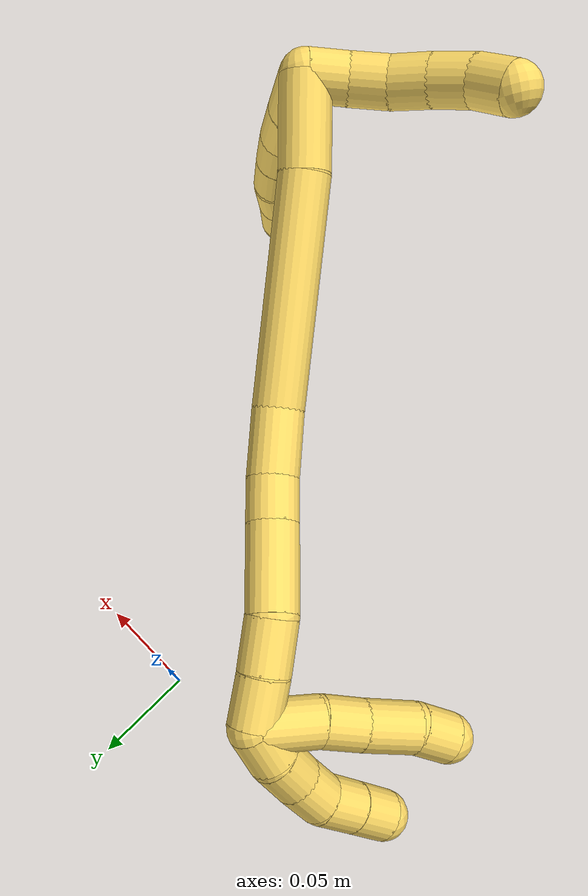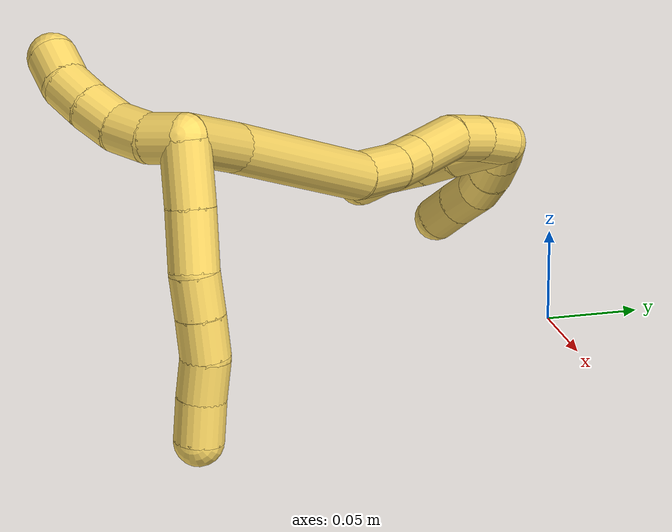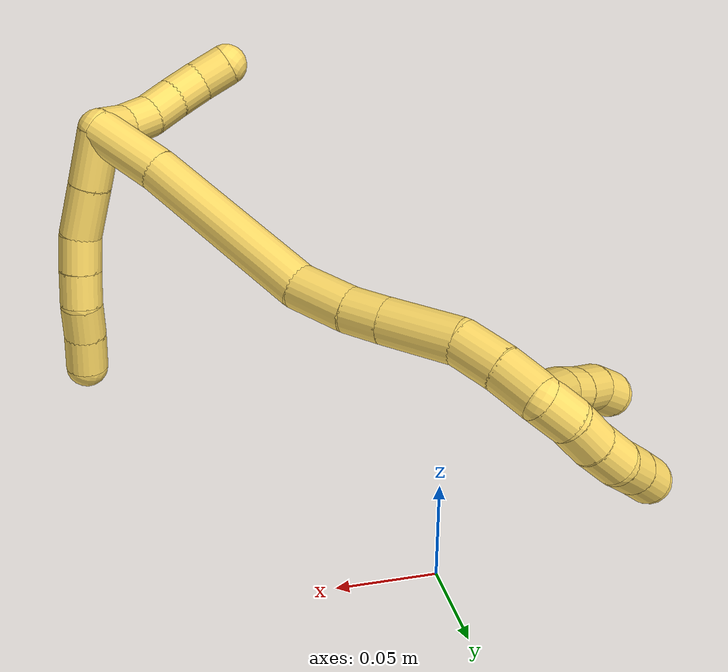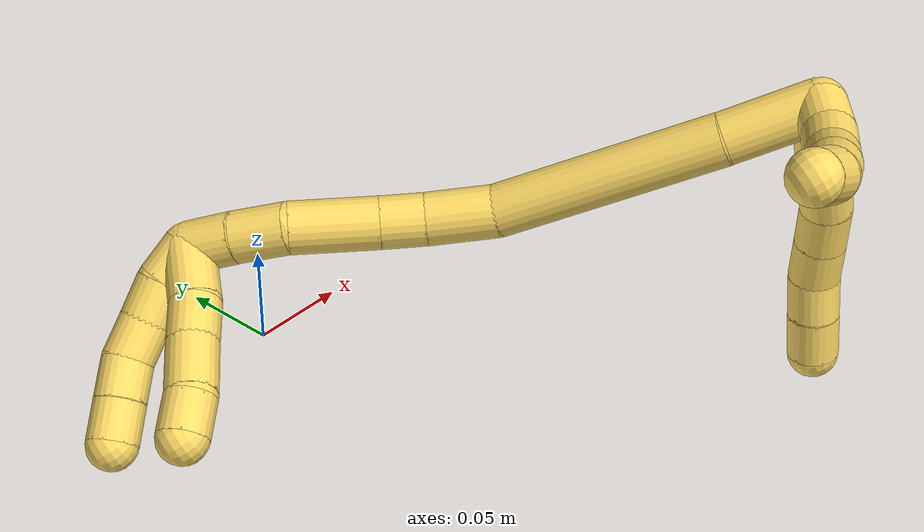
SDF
<sdf version="1.7">
 <world name="default">
  <model name="5">
   <static>0</static>
   <link name="5">
    <collision name="collision-cylinder-e_1_2_8">
     <pose>0.015395 0.004368 -0.004059 -2.31954 1.20124 -2.00831</pose>
     <geometry><cylinder><radius>0.0125</radius><length>0.033019</length></cylinder></geometry>
     <surface>
      <friction><ode><mu>1.16</mu><mu2>1.16</mu2><slip1>0</slip1><slip2>0</slip2></ode></friction>
      <contact><ode><kp>1e+06</kp><kd>1</kd><max_vel>0</max_vel><min_depth>0.001</min_depth></ode></contact>
     </surface>
    </collision>
    <visual name="visual-cylinder-e_1_2_8">
     <pose>0.015395 0.004368 -0.004059 -2.31954 1.20124 -2.00831</pose>
     <geometry><cylinder><radius>0.0125</radius><length>0.033019</length></cylinder></geometry>
     <material><ambient>1 0.858824 0.4 1</ambient></material>
    </visual>
    <collision name="collision-cylinder-e_2_8_9">
     <pose>0.045315 0.012494 -0.011693 -2.33116 1.22787 -2.04812</pose>
     <geometry><cylinder><radius>0.0125</radius><length>0.030845</length></cylinder></geometry>
     <surface>
      <friction><ode><mu>1.16</mu><mu2>1.16</mu2><slip1>0</slip1><slip2>0</slip2></ode></friction>
      <contact><ode><kp>1e+06</kp><kd>1</kd><max_vel>0</max_vel><min_depth>0.001</min_depth></ode></contact>
     </surface>
    </collision>
    <visual name="visual-cylinder-e_2_8_9">
     <pose>0.045315 0.012494 -0.011693 -2.33116 1.22787 -2.04812</pose>
     <geometry><cylinder><radius>0.0125</radius><length>0.030845</length></cylinder></geometry>
     <material><ambient>1 0.858824 0.4 1</ambient></material>
    </visual>
    <collision name="collision-cylinder-e_3_9_10">
     <pose>0.069263 0.019043 -0.019761 -2.58581 1.05921 -2.23469</pose>
     <geometry><cylinder><radius>0.0125</radius><length>0.021614</length></cylinder></geometry>
     <surface>
      <friction><ode><mu>1.16</mu><mu2>1.16</mu2><slip1>0</slip1><slip2>0</slip2></ode></friction>
      <contact><ode><kp>1e+06</kp><kd>1</kd><max_vel>0</max_vel><min_depth>0.001</min_depth></ode></contact>
     </surface>
    </collision>
    <visual name="visual-cylinder-e_3_9_10">
     <pose>0.069263 0.019043 -0.019761 -2.58581 1.05921 -2.23469</pose>
     <geometry><cylinder><radius>0.0125</radius><length>0.021614</length></cylinder></geometry>
     <material><ambient>1 0.858824 0.4 1</ambient></material>
    </visual>
    <collision name="collision-cylinder-e_4_10_11">
     <pose>0.087889 0.02425 -0.028923 -2.66403 1.05186 -2.34741</pose>
     <geometry><cylinder><radius>0.0125</radius><length>0.021196</length></cylinder></geometry>
     <surface>
      <friction><ode><mu>1.16</mu><mu2>1.16</mu2><slip1>0</slip1><slip2>0</slip2></ode></friction>
      <contact><ode><kp>1e+06</kp><kd>1</kd><max_vel>0</max_vel><min_depth>0.001</min_depth></ode></contact>
     </surface>
    </collision>
    <visual name="visual-cylinder-e_4_10_11">
     <pose>0.087889 0.02425 -0.028923 -2.66403 1.05186 -2.34741</pose>
     <geometry><cylinder><radius>0.0125</radius><length>0.021196</length></cylinder></geometry>
     <material><ambient>1 0.858824 0.4 1</ambient></material>
    </visual>
    <collision name="collision-cylinder-e_5_11_12">
     <pose>0.106624 0.026839 -0.037936 -3.10183 1.14287 -3.07976</pose>
     <geometry><cylinder><radius>0.0125</radius><length>0.020955</length></cylinder></geometry>
     <surface>
      <friction><ode><mu>1.16</mu><mu2>1.16</mu2><slip1>0</slip1><slip2>0</slip2></ode></friction>
      <contact><ode><kp>1e+06</kp><kd>1</kd><max_vel>0</max_vel><min_depth>0.001</min_depth></ode></contact>
     </surface>
    </collision>
    <visual name="visual-cylinder-e_5_11_12">
     <pose>0.106624 0.026839 -0.037936 -3.10183 1.14287 -3.07976</pose>
     <geometry><cylinder><radius>0.0125</radius><length>0.020955</length></cylinder></geometry>
     <material><ambient>1 0.858824 0.4 1</ambient></material>
    </visual>
    <collision name="collision-cylinder-e_6_12_6">
     <pose>0.126419 0.027821 -0.046655 -2.95861 1.16174 -2.86385</pose>
     <geometry><cylinder><radius>0.0125</radius><length>0.022371</length></cylinder></geometry>
     <surface>
      <friction><ode><mu>1.16</mu><mu2>1.16</mu2><slip1>0</slip1><slip2>0</slip2></ode></friction>
      <contact><ode><kp>1e+06</kp><kd>1</kd><max_vel>0</max_vel><min_depth>0.001</min_depth></ode></contact>
     </surface>
    </collision>
    <visual name="visual-cylinder-e_6_12_6">
     <pose>0.126419 0.027821 -0.046655 -2.95861 1.16174 -2.86385</pose>
     <geometry><cylinder><radius>0.0125</radius><length>0.022371</length></cylinder></geometry>
     <material><ambient>1 0.858824 0.4 1</ambient></material>
    </visual>
    <collision name="collision-cylinder-e_1_2_13">
     <pose>0.001662 -0.009456 -0.002798 1.85854 0.166957 0.223119</pose>
     <geometry><cylinder><radius>0.0125</radius><length>0.02</length></cylinder></geometry>
     <surface>
      <friction><ode><mu>1.16</mu><mu2>1.16</mu2><slip1>0</slip1><slip2>0</slip2></ode></friction>
      <contact><ode><kp>1e+06</kp><kd>1</kd><max_vel>0</max_vel><min_depth>0.001</min_depth></ode></contact>
     </surface>
    </collision>
    <visual name="visual-cylinder-e_1_2_13">
     <pose>0.001662 -0.009456 -0.002798 1.85854 0.166957 0.223119</pose>
     <geometry><cylinder><radius>0.0125</radius><length>0.02</length></cylinder></geometry>
     <material><ambient>1 0.858824 0.4 1</ambient></material>
    </visual>
    <collision name="collision-cylinder-e_2_13_14">
     <pose>0.002164 -0.02831 -0.008808 1.89996 -0.116194 -0.162302</pose>
     <geometry><cylinder><radius>0.0125</radius><length>0.02</length></cylinder></geometry>
     <surface>
      <friction><ode><mu>1.16</mu><mu2>1.16</mu2><slip1>0</slip1><slip2>0</slip2></ode></friction>
      <contact><ode><kp>1e+06</kp><kd>1</kd><max_vel>0</max_vel><min_depth>0.001</min_depth></ode></contact>
     </surface>
    </collision>
    <visual name="visual-cylinder-e_2_13_14">
     <pose>0.002164 -0.02831 -0.008808 1.89996 -0.116194 -0.162302</pose>
     <geometry><cylinder><radius>0.0125</radius><length>0.02</length></cylinder></geometry>
     <material><ambient>1 0.858824 0.4 1</ambient></material>
    </visual>
    <collision name="collision-cylinder-e_3_14_15">
     <pose>-0.002544 -0.046763 -0.014352 1.82307 -0.362832 -0.464868</pose>
     <geometry><cylinder><radius>0.0125</radius><length>0.02</length></cylinder></geometry>
     <surface>
      <friction><ode><mu>1.16</mu><mu2>1.16</mu2><slip1>0</slip1><slip2>0</slip2></ode></friction>
      <contact><ode><kp>1e+06</kp><kd>1</kd><max_vel>0</max_vel><min_depth>0.001</min_depth></ode></contact>
     </surface>
    </collision>
    <visual name="visual-cylinder-e_3_14_15">
     <pose>-0.002544 -0.046763 -0.014352 1.82307 -0.362832 -0.464868</pose>
     <geometry><cylinder><radius>0.0125</radius><length>0.02</length></cylinder></geometry>
     <material><ambient>1 0.858824 0.4 1</ambient></material>
    </visual>
    <collision name="collision-cylinder-e_4_15_16">
     <pose>-0.010269 -0.064412 -0.019629 1.90075 -0.430778 -0.594242</pose>
     <geometry><cylinder><radius>0.0125</radius><length>0.02</length></cylinder></geometry>
     <surface>
      <friction><ode><mu>1.16</mu><mu2>1.16</mu2><slip1>0</slip1><slip2>0</slip2></ode></friction>
      <contact><ode><kp>1e+06</kp><kd>1</kd><max_vel>0</max_vel><min_depth>0.001</min_depth></ode></contact>
     </surface>
    </collision>
    <visual name="visual-cylinder-e_4_15_16">
     <pose>-0.010269 -0.064412 -0.019629 1.90075 -0.430778 -0.594242</pose>
     <geometry><cylinder><radius>0.0125</radius><length>0.02</length></cylinder></geometry>
     <material><ambient>1 0.858824 0.4 1</ambient></material>
    </visual>
    <collision name="collision-cylinder-e_5_16_5">
     <pose>-0.020499 -0.07973 -0.026836 2.13602 -0.650287 -1.09986</pose>
     <geometry><cylinder><radius>0.0125</radius><length>0.02</length></cylinder></geometry>
     <surface>
      <friction><ode><mu>1.16</mu><mu2>1.16</mu2><slip1>0</slip1><slip2>0</slip2></ode></friction>
      <contact><ode><kp>1e+06</kp><kd>1</kd><max_vel>0</max_vel><min_depth>0.001</min_depth></ode></contact>
     </surface>
    </collision>
    <visual name="visual-cylinder-e_5_16_5">
     <pose>-0.020499 -0.07973 -0.026836 2.13602 -0.650287 -1.09986</pose>
     <geometry><cylinder><radius>0.0125</radius><length>0.02</length></cylinder></geometry>
     <material><ambient>1 0.858824 0.4 1</ambient></material>
    </visual>
    <collision name="collision-cylinder-e_1_2_17">
     <pose>-0.002443 0.00516 -0.02161 -2.90721 -0.109538 0.87162</pose>
     <geometry><cylinder><radius>0.0125</radius><length>0.044703</length></cylinder></geometry>
     <surface>
      <friction><ode><mu>1.16</mu><mu2>1.16</mu2><slip1>0</slip1><slip2>0</slip2></ode></friction>
      <contact><ode><kp>1e+06</kp><kd>1</kd><max_vel>0</max_vel><min_depth>0.001</min_depth></ode></contact>
     </surface>
    </collision>
    <visual name="visual-cylinder-e_1_2_17">
     <pose>-0.002443 0.00516 -0.02161 -2.90721 -0.109538 0.87162</pose>
     <geometry><cylinder><radius>0.0125</radius><length>0.044703</length></cylinder></geometry>
     <material><ambient>1 0.858824 0.4 1</ambient></material>
    </visual>
    <collision name="collision-cylinder-e_2_17_18">
     <pose>-0.009491 0.028394 -0.094629 -2.80352 -0.084284 0.484438</pose>
     <geometry><cylinder><radius>0.0125</radius><length>0.109376</length></cylinder></geometry>
     <surface>
      <friction><ode><mu>1.16</mu><mu2>1.16</mu2><slip1>0</slip1><slip2>0</slip2></ode></friction>
      <contact><ode><kp>1e+06</kp><kd>1</kd><max_vel>0</max_vel><min_depth>0.001</min_depth></ode></contact>
     </surface>
    </collision>
    <visual name="visual-cylinder-e_2_17_18">
     <pose>-0.009491 0.028394 -0.094629 -2.80352 -0.084284 0.484438</pose>
     <geometry><cylinder><radius>0.0125</radius><length>0.109376</length></cylinder></geometry>
     <material><ambient>1 0.858824 0.4 1</ambient></material>
    </visual>
    <collision name="collision-cylinder-e_3_18_19">
     <pose>-0.019542 0.050964 -0.160881 -2.84748 -0.337787 1.71111</pose>
     <geometry><cylinder><radius>0.0125</radius><length>0.032876</length></cylinder></geometry>
     <surface>
      <friction><ode><mu>1.16</mu><mu2>1.16</mu2><slip1>0</slip1><slip2>0</slip2></ode></friction>
      <contact><ode><kp>1e+06</kp><kd>1</kd><max_vel>0</max_vel><min_depth>0.001</min_depth></ode></contact>
     </surface>
    </collision>
    <visual name="visual-cylinder-e_3_18_19">
     <pose>-0.019542 0.050964 -0.160881 -2.84748 -0.337787 1.71111</pose>
     <geometry><cylinder><radius>0.0125</radius><length>0.032876</length></cylinder></geometry>
     <material><ambient>1 0.858824 0.4 1</ambient></material>
    </visual>
    <collision name="collision-cylinder-e_4_19_20">
     <pose>-0.029507 0.057502 -0.185224 -2.92979 -0.435136 2.24519</pose>
     <geometry><cylinder><radius>0.0125</radius><length>0.021431</length></cylinder></geometry>
     <surface>
      <friction><ode><mu>1.16</mu><mu2>1.16</mu2><slip1>0</slip1><slip2>0</slip2></ode></friction>
      <contact><ode><kp>1e+06</kp><kd>1</kd><max_vel>0</max_vel><min_depth>0.001</min_depth></ode></contact>
     </surface>
    </collision>
    <visual name="visual-cylinder-e_4_19_20">
     <pose>-0.029507 0.057502 -0.185224 -2.92979 -0.435136 2.24519</pose>
     <geometry><cylinder><radius>0.0125</radius><length>0.021431</length></cylinder></geometry>
     <material><ambient>1 0.858824 0.4 1</ambient></material>
    </visual>
    <collision name="collision-cylinder-e_5_20_21">
     <pose>-0.043301 0.063468 -0.21315 -2.93182 -0.45758 2.29246</pose>
     <geometry><cylinder><radius>0.0125</radius><length>0.042</length></cylinder></geometry>
     <surface>
      <friction><ode><mu>1.16</mu><mu2>1.16</mu2><slip1>0</slip1><slip2>0</slip2></ode></friction>
      <contact><ode><kp>1e+06</kp><kd>1</kd><max_vel>0</max_vel><min_depth>0.001</min_depth></ode></contact>
     </surface>
    </collision>
    <visual name="visual-cylinder-e_5_20_21">
     <pose>-0.043301 0.063468 -0.21315 -2.93182 -0.45758 2.29246</pose>
     <geometry><cylinder><radius>0.0125</radius><length>0.042</length></cylinder></geometry>
     <material><ambient>1 0.858824 0.4 1</ambient></material>
    </visual>
    <collision name="collision-cylinder-e_6_21_22">
     <pose>-0.055443 0.07191 -0.243326 -2.77439 -0.223787 1.08833</pose>
     <geometry><cylinder><radius>0.0125</radius><length>0.02582</length></cylinder></geometry>
     <surface>
      <friction><ode><mu>1.16</mu><mu2>1.16</mu2><slip1>0</slip1><slip2>0</slip2></ode></friction>
      <contact><ode><kp>1e+06</kp><kd>1</kd><max_vel>0</max_vel><min_depth>0.001</min_depth></ode></contact>
     </surface>
    </collision>
    <visual name="visual-cylinder-e_6_21_22">
     <pose>-0.055443 0.07191 -0.243326 -2.77439 -0.223787 1.08833</pose>
     <geometry><cylinder><radius>0.0125</radius><length>0.02582</length></cylinder></geometry>
     <material><ambient>1 0.858824 0.4 1</ambient></material>
    </visual>
    <collision name="collision-cylinder-e_7_22_1">
     <pose>-0.060047 0.081127 -0.265866 -2.73107 -0.146647 0.678378</pose>
     <geometry><cylinder><radius>0.0125</radius><length>0.023795</length></cylinder></geometry>
     <surface>
      <friction><ode><mu>1.16</mu><mu2>1.16</mu2><slip1>0</slip1><slip2>0</slip2></ode></friction>
      <contact><ode><kp>1e+06</kp><kd>1</kd><max_vel>0</max_vel><min_depth>0.001</min_depth></ode></contact>
     </surface>
    </collision>
    <visual name="visual-cylinder-e_7_22_1">
     <pose>-0.060047 0.081127 -0.265866 -2.73107 -0.146647 0.678378</pose>
     <geometry><cylinder><radius>0.0125</radius><length>0.023795</length></cylinder></geometry>
     <material><ambient>1 0.858824 0.4 1</ambient></material>
    </visual>
    <collision name="collision-cylinder-e_1_1_23">
     <pose>-0.058878 0.083594 -0.285963 2.90643 0.29495 1.798</pose>
     <geometry><cylinder><radius>0.0125</radius><length>0.02</length></cylinder></geometry>
     <surface>
      <friction><ode><mu>1.16</mu><mu2>1.16</mu2><slip1>0</slip1><slip2>0</slip2></ode></friction>
      <contact><ode><kp>1e+06</kp><kd>1</kd><max_vel>0</max_vel><min_depth>0.001</min_depth></ode></contact>
     </surface>
    </collision>
    <visual name="visual-cylinder-e_1_1_23">
     <pose>-0.058878 0.083594 -0.285963 2.90643 0.29495 1.798</pose>
     <geometry><cylinder><radius>0.0125</radius><length>0.02</length></cylinder></geometry>
     <material><ambient>1 0.858824 0.4 1</ambient></material>
    </visual>
    <collision name="collision-cylinder-e_2_23_24">
     <pose>-0.051241 0.078206 -0.303492 2.77485 0.492755 1.87078</pose>
     <geometry><cylinder><radius>0.0125</radius><length>0.02</length></cylinder></geometry>
     <surface>
      <friction><ode><mu>1.16</mu><mu2>1.16</mu2><slip1>0</slip1><slip2>0</slip2></ode></friction>
      <contact><ode><kp>1e+06</kp><kd>1</kd><max_vel>0</max_vel><min_depth>0.001</min_depth></ode></contact>
     </surface>
    </collision>
    <visual name="visual-cylinder-e_2_23_24">
     <pose>-0.051241 0.078206 -0.303492 2.77485 0.492755 1.87078</pose>
     <geometry><cylinder><radius>0.0125</radius><length>0.02</length></cylinder></geometry>
     <material><ambient>1 0.858824 0.4 1</ambient></material>
    </visual>
    <collision name="collision-cylinder-e_3_24_25">
     <pose>-0.042365 0.071022 -0.319879 2.68343 0.427447 1.49915</pose>
     <geometry><cylinder><radius>0.0125</radius><length>0.02</length></cylinder></geometry>
     <surface>
      <friction><ode><mu>1.16</mu><mu2>1.16</mu2><slip1>0</slip1><slip2>0</slip2></ode></friction>
      <contact><ode><kp>1e+06</kp><kd>1</kd><max_vel>0</max_vel><min_depth>0.001</min_depth></ode></contact>
     </surface>
    </collision>
    <visual name="visual-cylinder-e_3_24_25">
     <pose>-0.042365 0.071022 -0.319879 2.68343 0.427447 1.49915</pose>
     <geometry><cylinder><radius>0.0125</radius><length>0.02</length></cylinder></geometry>
     <material><ambient>1 0.858824 0.4 1</ambient></material>
    </visual>
    <collision name="collision-cylinder-e_4_25_26">
     <pose>-0.033533 0.060538 -0.334067 2.32161 0.487734 1.03991</pose>
     <geometry><cylinder><radius>0.0125</radius><length>0.02</length></cylinder></geometry>
     <surface>
      <friction><ode><mu>1.16</mu><mu2>1.16</mu2><slip1>0</slip1><slip2>0</slip2></ode></friction>
      <contact><ode><kp>1e+06</kp><kd>1</kd><max_vel>0</max_vel><min_depth>0.001</min_depth></ode></contact>
     </surface>
    </collision>
    <visual name="visual-cylinder-e_4_25_26">
     <pose>-0.033533 0.060538 -0.334067 2.32161 0.487734 1.03991</pose>
     <geometry><cylinder><radius>0.0125</radius><length>0.02</length></cylinder></geometry>
     <material><ambient>1 0.858824 0.4 1</ambient></material>
    </visual>
    <collision name="collision-cylinder-e_5_26_4">
     <pose>-0.023936 0.047856 -0.346191 2.34595 0.513291 1.11648</pose>
     <geometry><cylinder><radius>0.0125</radius><length>0.02</length></cylinder></geometry>
     <surface>
      <friction><ode><mu>1.16</mu><mu2>1.16</mu2><slip1>0</slip1><slip2>0</slip2></ode></friction>
      <contact><ode><kp>1e+06</kp><kd>1</kd><max_vel>0</max_vel><min_depth>0.001</min_depth></ode></contact>
     </surface>
    </collision>
    <visual name="visual-cylinder-e_5_26_4">
     <pose>-0.023936 0.047856 -0.346191 2.34595 0.513291 1.11648</pose>
     <geometry><cylinder><radius>0.0125</radius><length>0.02</length></cylinder></geometry>
     <material><ambient>1 0.858824 0.4 1</ambient></material>
    </visual>
    <collision name="collision-cylinder-e_1_1_27">
     <pose>-0.055814 0.072019 -0.280983 1.87441 0.391435 0.527186</pose>
     <geometry><cylinder><radius>0.0125</radius><length>0.0313</length></cylinder></geometry>
     <surface>
      <friction><ode><mu>1.16</mu><mu2>1.16</mu2><slip1>0</slip1><slip2>0</slip2></ode></friction>
      <contact><ode><kp>1e+06</kp><kd>1</kd><max_vel>0</max_vel><min_depth>0.001</min_depth></ode></contact>
     </surface>
    </collision>
    <visual name="visual-cylinder-e_1_1_27">
     <pose>-0.055814 0.072019 -0.280983 1.87441 0.391435 0.527186</pose>
     <geometry><cylinder><radius>0.0125</radius><length>0.0313</length></cylinder></geometry>
     <material><ambient>1 0.858824 0.4 1</ambient></material>
    </visual>
    <collision name="collision-cylinder-e_2_27_28">
     <pose>-0.046106 0.049374 -0.28988 2.04804 0.359277 0.579875</pose>
     <geometry><cylinder><radius>0.0125</radius><length>0.021262</length></cylinder></geometry>
     <surface>
      <friction><ode><mu>1.16</mu><mu2>1.16</mu2><slip1>0</slip1><slip2>0</slip2></ode></friction>
      <contact><ode><kp>1e+06</kp><kd>1</kd><max_vel>0</max_vel><min_depth>0.001</min_depth></ode></contact>
     </surface>
    </collision>
    <visual name="visual-cylinder-e_2_27_28">
     <pose>-0.046106 0.049374 -0.28988 2.04804 0.359277 0.579875</pose>
     <geometry><cylinder><radius>0.0125</radius><length>0.021262</length></cylinder></geometry>
     <material><ambient>1 0.858824 0.4 1</ambient></material>
    </visual>
    <collision name="collision-cylinder-e_3_28_29">
     <pose>-0.037928 0.028715 -0.299656 1.98559 0.331144 0.501549</pose>
     <geometry><cylinder><radius>0.0125</radius><length>0.027313</length></cylinder></geometry>
     <surface>
      <friction><ode><mu>1.16</mu><mu2>1.16</mu2><slip1>0</slip1><slip2>0</slip2></ode></friction>
      <contact><ode><kp>1e+06</kp><kd>1</kd><max_vel>0</max_vel><min_depth>0.001</min_depth></ode></contact>
     </surface>
    </collision>
    <visual name="visual-cylinder-e_3_28_29">
     <pose>-0.037928 0.028715 -0.299656 1.98559 0.331144 0.501549</pose>
     <geometry><cylinder><radius>0.0125</radius><length>0.027313</length></cylinder></geometry>
     <material><ambient>1 0.858824 0.4 1</ambient></material>
    </visual>
    <collision name="collision-cylinder-e_4_29_3">
     <pose>-0.029524 0.00975 -0.310733 2.25875 0.404868 0.819552</pose>
     <geometry><cylinder><radius>0.0125</radius><length>0.020125</length></cylinder></geometry>
     <surface>
      <friction><ode><mu>1.16</mu><mu2>1.16</mu2><slip1>0</slip1><slip2>0</slip2></ode></friction>
      <contact><ode><kp>1e+06</kp><kd>1</kd><max_vel>0</max_vel><min_depth>0.001</min_depth></ode></contact>
     </surface>
    </collision>
    <visual name="visual-cylinder-e_4_29_3">
     <pose>-0.029524 0.00975 -0.310733 2.25875 0.404868 0.819552</pose>
     <geometry><cylinder><radius>0.0125</radius><length>0.020125</length></cylinder></geometry>
     <material><ambient>1 0.858824 0.4 1</ambient></material>
    </visual>
    <collision name="collision-sphere-3">
     <pose>-0.025561 0.002605 -0.316606 0 -0 0</pose>
     <geometry><sphere><radius>0.0125</radius></sphere></geometry>
     <surface>
      <friction><ode><mu>1.16</mu><mu2>1.16</mu2><slip1>0</slip1><slip2>0</slip2></ode></friction>
      <contact><ode><kp>1e+06</kp><kd>1</kd><max_vel>0</max_vel><min_depth>0.001</min_depth></ode></contact>
     </surface>
    </collision>
    <visual name="visual-sphere-3">
     <pose>-0.025561 0.002605 -0.316606 0 -0 0</pose>
     <geometry><sphere><radius>0.0125</radius></sphere></geometry>
     <material><ambient>1 0.858824 0.4 1</ambient></material>
    </visual>
    <collision name="collision-sphere-29">
     <pose>-0.033488 0.016895 -0.30486 0 -0 0</pose>
     <geometry><sphere><radius>0.0125</radius></sphere></geometry>
     <surface>
      <friction><ode><mu>1.16</mu><mu2>1.16</mu2><slip1>0</slip1><slip2>0</slip2></ode></friction>
      <contact><ode><kp>1e+06</kp><kd>1</kd><max_vel>0</max_vel><min_depth>0.001</min_depth></ode></contact>
     </surface>
    </collision>
    <visual name="visual-sphere-29">
     <pose>-0.033488 0.016895 -0.30486 0 -0 0</pose>
     <geometry><sphere><radius>0.0125</radius></sphere></geometry>
     <material><ambient>1 0.858824 0.4 1</ambient></material>
    </visual>
    <collision name="collision-sphere-28">
     <pose>-0.042368 0.040534 -0.294451 0 -0 0</pose>
     <geometry><sphere><radius>0.0125</radius></sphere></geometry>
     <surface>
      <friction><ode><mu>1.16</mu><mu2>1.16</mu2><slip1>0</slip1><slip2>0</slip2></ode></friction>
      <contact><ode><kp>1e+06</kp><kd>1</kd><max_vel>0</max_vel><min_depth>0.001</min_depth></ode></contact>
     </surface>
    </collision>
    <visual name="visual-sphere-28">
     <pose>-0.042368 0.040534 -0.294451 0 -0 0</pose>
     <geometry><sphere><radius>0.0125</radius></sphere></geometry>
     <material><ambient>1 0.858824 0.4 1</ambient></material>
    </visual>
    <collision name="collision-sphere-27">
     <pose>-0.049844 0.058214 -0.285309 0 -0 0</pose>
     <geometry><sphere><radius>0.0125</radius></sphere></geometry>
     <surface>
      <friction><ode><mu>1.16</mu><mu2>1.16</mu2><slip1>0</slip1><slip2>0</slip2></ode></friction>
      <contact><ode><kp>1e+06</kp><kd>1</kd><max_vel>0</max_vel><min_depth>0.001</min_depth></ode></contact>
     </surface>
    </collision>
    <visual name="visual-sphere-27">
     <pose>-0.049844 0.058214 -0.285309 0 -0 0</pose>
     <geometry><sphere><radius>0.0125</radius></sphere></geometry>
     <material><ambient>1 0.858824 0.4 1</ambient></material>
    </visual>
    <collision name="collision-sphere-4">
     <pose>-0.019026 0.041634 -0.352287 0 -0 0</pose>
     <geometry><sphere><radius>0.0125</radius></sphere></geometry>
     <surface>
      <friction><ode><mu>1.16</mu><mu2>1.16</mu2><slip1>0</slip1><slip2>0</slip2></ode></friction>
      <contact><ode><kp>1e+06</kp><kd>1</kd><max_vel>0</max_vel><min_depth>0.001</min_depth></ode></contact>
     </surface>
    </collision>
    <visual name="visual-sphere-4">
     <pose>-0.019026 0.041634 -0.352287 0 -0 0</pose>
     <geometry><sphere><radius>0.0125</radius></sphere></geometry>
     <material><ambient>1 0.858824 0.4 1</ambient></material>
    </visual>
    <collision name="collision-sphere-26">
     <pose>-0.028847 0.054079 -0.340094 0 -0 0</pose>
     <geometry><sphere><radius>0.0125</radius></sphere></geometry>
     <surface>
      <friction><ode><mu>1.16</mu><mu2>1.16</mu2><slip1>0</slip1><slip2>0</slip2></ode></friction>
      <contact><ode><kp>1e+06</kp><kd>1</kd><max_vel>0</max_vel><min_depth>0.001</min_depth></ode></contact>
     </surface>
    </collision>
    <visual name="visual-sphere-26">
     <pose>-0.028847 0.054079 -0.340094 0 -0 0</pose>
     <geometry><sphere><radius>0.0125</radius></sphere></geometry>
     <material><ambient>1 0.858824 0.4 1</ambient></material>
    </visual>
    <collision name="collision-sphere-25">
     <pose>-0.038219 0.066997 -0.32804 0 -0 0</pose>
     <geometry><sphere><radius>0.0125</radius></sphere></geometry>
     <surface>
      <friction><ode><mu>1.16</mu><mu2>1.16</mu2><slip1>0</slip1><slip2>0</slip2></ode></friction>
      <contact><ode><kp>1e+06</kp><kd>1</kd><max_vel>0</max_vel><min_depth>0.001</min_depth></ode></contact>
     </surface>
    </collision>
    <visual name="visual-sphere-25">
     <pose>-0.038219 0.066997 -0.32804 0 -0 0</pose>
     <geometry><sphere><radius>0.0125</radius></sphere></geometry>
     <material><ambient>1 0.858824 0.4 1</ambient></material>
    </visual>
    <collision name="collision-sphere-24">
     <pose>-0.04651 0.075047 -0.311717 0 -0 0</pose>
     <geometry><sphere><radius>0.0125</radius></sphere></geometry>
     <surface>
      <friction><ode><mu>1.16</mu><mu2>1.16</mu2><slip1>0</slip1><slip2>0</slip2></ode></friction>
      <contact><ode><kp>1e+06</kp><kd>1</kd><max_vel>0</max_vel><min_depth>0.001</min_depth></ode></contact>
     </surface>
    </collision>
    <visual name="visual-sphere-24">
     <pose>-0.04651 0.075047 -0.311717 0 -0 0</pose>
     <geometry><sphere><radius>0.0125</radius></sphere></geometry>
     <material><ambient>1 0.858824 0.4 1</ambient></material>
    </visual>
    <collision name="collision-sphere-23">
     <pose>-0.055971 0.081365 -0.295268 0 -0 0</pose>
     <geometry><sphere><radius>0.0125</radius></sphere></geometry>
     <surface>
      <friction><ode><mu>1.16</mu><mu2>1.16</mu2><slip1>0</slip1><slip2>0</slip2></ode></friction>
      <contact><ode><kp>1e+06</kp><kd>1</kd><max_vel>0</max_vel><min_depth>0.001</min_depth></ode></contact>
     </surface>
    </collision>
    <visual name="visual-sphere-23">
     <pose>-0.055971 0.081365 -0.295268 0 -0 0</pose>
     <geometry><sphere><radius>0.0125</radius></sphere></geometry>
     <material><ambient>1 0.858824 0.4 1</ambient></material>
    </visual>
    <collision name="collision-sphere-1">
     <pose>-0.061785 0.085824 -0.276658 0 -0 0</pose>
     <geometry><sphere><radius>0.0125</radius></sphere></geometry>
     <surface>
      <friction><ode><mu>1.16</mu><mu2>1.16</mu2><slip1>0</slip1><slip2>0</slip2></ode></friction>
      <contact><ode><kp>1e+06</kp><kd>1</kd><max_vel>0</max_vel><min_depth>0.001</min_depth></ode></contact>
     </surface>
    </collision>
    <visual name="visual-sphere-1">
     <pose>-0.061785 0.085824 -0.276658 0 -0 0</pose>
     <geometry><sphere><radius>0.0125</radius></sphere></geometry>
     <material><ambient>1 0.858824 0.4 1</ambient></material>
    </visual>
    <collision name="collision-sphere-22">
     <pose>-0.058308 0.076429 -0.255074 0 -0 0</pose>
     <geometry><sphere><radius>0.0125</radius></sphere></geometry>
     <surface>
      <friction><ode><mu>1.16</mu><mu2>1.16</mu2><slip1>0</slip1><slip2>0</slip2></ode></friction>
      <contact><ode><kp>1e+06</kp><kd>1</kd><max_vel>0</max_vel><min_depth>0.001</min_depth></ode></contact>
     </surface>
    </collision>
    <visual name="visual-sphere-22">
     <pose>-0.058308 0.076429 -0.255074 0 -0 0</pose>
     <geometry><sphere><radius>0.0125</radius></sphere></geometry>
     <material><ambient>1 0.858824 0.4 1</ambient></material>
    </visual>
    <collision name="collision-sphere-21">
     <pose>-0.052578 0.067391 -0.231577 0 -0 0</pose>
     <geometry><sphere><radius>0.0125</radius></sphere></geometry>
     <surface>
      <friction><ode><mu>1.16</mu><mu2>1.16</mu2><slip1>0</slip1><slip2>0</slip2></ode></friction>
      <contact><ode><kp>1e+06</kp><kd>1</kd><max_vel>0</max_vel><min_depth>0.001</min_depth></ode></contact>
     </surface>
    </collision>
    <visual name="visual-sphere-21">
     <pose>-0.052578 0.067391 -0.231577 0 -0 0</pose>
     <geometry><sphere><radius>0.0125</radius></sphere></geometry>
     <material><ambient>1 0.858824 0.4 1</ambient></material>
    </visual>
    <collision name="collision-sphere-12">
     <pose>0.116157 0.027012 -0.042281 0 -0 0</pose>
     <geometry><sphere><radius>0.0125</radius></sphere></geometry>
     <surface>
      <friction><ode><mu>1.16</mu><mu2>1.16</mu2><slip1>0</slip1><slip2>0</slip2></ode></friction>
      <contact><ode><kp>1e+06</kp><kd>1</kd><max_vel>0</max_vel><min_depth>0.001</min_depth></ode></contact>
     </surface>
    </collision>
    <visual name="visual-sphere-12">
     <pose>0.116157 0.027012 -0.042281 0 -0 0</pose>
     <geometry><sphere><radius>0.0125</radius></sphere></geometry>
     <material><ambient>1 0.858824 0.4 1</ambient></material>
    </visual>
    <collision name="collision-sphere-11">
     <pose>0.097091 0.026666 -0.033591 0 -0 0</pose>
     <geometry><sphere><radius>0.0125</radius></sphere></geometry>
     <surface>
      <friction><ode><mu>1.16</mu><mu2>1.16</mu2><slip1>0</slip1><slip2>0</slip2></ode></friction>
      <contact><ode><kp>1e+06</kp><kd>1</kd><max_vel>0</max_vel><min_depth>0.001</min_depth></ode></contact>
     </surface>
    </collision>
    <visual name="visual-sphere-11">
     <pose>0.097091 0.026666 -0.033591 0 -0 0</pose>
     <geometry><sphere><radius>0.0125</radius></sphere></geometry>
     <material><ambient>1 0.858824 0.4 1</ambient></material>
    </visual>
    <collision name="collision-sphere-10">
     <pose>0.078686 0.021835 -0.024255 0 -0 0</pose>
     <geometry><sphere><radius>0.0125</radius></sphere></geometry>
     <surface>
      <friction><ode><mu>1.16</mu><mu2>1.16</mu2><slip1>0</slip1><slip2>0</slip2></ode></friction>
      <contact><ode><kp>1e+06</kp><kd>1</kd><max_vel>0</max_vel><min_depth>0.001</min_depth></ode></contact>
     </surface>
    </collision>
    <visual name="visual-sphere-10">
     <pose>0.078686 0.021835 -0.024255 0 -0 0</pose>
     <geometry><sphere><radius>0.0125</radius></sphere></geometry>
     <material><ambient>1 0.858824 0.4 1</ambient></material>
    </visual>
    <collision name="collision-sphere-9">
     <pose>0.059839 0.016252 -0.015267 0 -0 0</pose>
     <geometry><sphere><radius>0.0125</radius></sphere></geometry>
     <surface>
      <friction><ode><mu>1.16</mu><mu2>1.16</mu2><slip1>0</slip1><slip2>0</slip2></ode></friction>
      <contact><ode><kp>1e+06</kp><kd>1</kd><max_vel>0</max_vel><min_depth>0.001</min_depth></ode></contact>
     </surface>
    </collision>
    <visual name="visual-sphere-9">
     <pose>0.059839 0.016252 -0.015267 0 -0 0</pose>
     <geometry><sphere><radius>0.0125</radius></sphere></geometry>
     <material><ambient>1 0.858824 0.4 1</ambient></material>
    </visual>
    <collision name="collision-sphere-2">
     <geometry><sphere><radius>0.0125</radius></sphere></geometry>
     <surface>
      <friction><ode><mu>1.16</mu><mu2>1.16</mu2><slip1>0</slip1><slip2>0</slip2></ode></friction>
      <contact><ode><kp>1e+06</kp><kd>1</kd><max_vel>0</max_vel><min_depth>0.001</min_depth></ode></contact>
     </surface>
    </collision>
    <visual name="visual-sphere-2">
     <geometry><sphere><radius>0.0125</radius></sphere></geometry>
     <material><ambient>1 0.858824 0.4 1</ambient></material>
    </visual>
    <collision name="collision-sphere-19">
     <pose>-0.02499 0.05546 -0.175724 0 -0 0</pose>
     <geometry><sphere><radius>0.0125</radius></sphere></geometry>
     <surface>
      <friction><ode><mu>1.16</mu><mu2>1.16</mu2><slip1>0</slip1><slip2>0</slip2></ode></friction>
      <contact><ode><kp>1e+06</kp><kd>1</kd><max_vel>0</max_vel><min_depth>0.001</min_depth></ode></contact>
     </surface>
    </collision>
    <visual name="visual-sphere-19">
     <pose>-0.02499 0.05546 -0.175724 0 -0 0</pose>
     <geometry><sphere><radius>0.0125</radius></sphere></geometry>
     <material><ambient>1 0.858824 0.4 1</ambient></material>
    </visual>
    <collision name="collision-sphere-8">
     <pose>0.03079 0.008737 -0.008119 0 -0 0</pose>
     <geometry><sphere><radius>0.0125</radius></sphere></geometry>
     <surface>
      <friction><ode><mu>1.16</mu><mu2>1.16</mu2><slip1>0</slip1><slip2>0</slip2></ode></friction>
      <contact><ode><kp>1e+06</kp><kd>1</kd><max_vel>0</max_vel><min_depth>0.001</min_depth></ode></contact>
     </surface>
    </collision>
    <visual name="visual-sphere-8">
     <pose>0.03079 0.008737 -0.008119 0 -0 0</pose>
     <geometry><sphere><radius>0.0125</radius></sphere></geometry>
     <material><ambient>1 0.858824 0.4 1</ambient></material>
    </visual>
    <collision name="collision-sphere-6">
     <pose>0.136682 0.028631 -0.05103 0 -0 0</pose>
     <geometry><sphere><radius>0.0125</radius></sphere></geometry>
     <surface>
      <friction><ode><mu>1.16</mu><mu2>1.16</mu2><slip1>0</slip1><slip2>0</slip2></ode></friction>
      <contact><ode><kp>1e+06</kp><kd>1</kd><max_vel>0</max_vel><min_depth>0.001</min_depth></ode></contact>
     </surface>
    </collision>
    <visual name="visual-sphere-6">
     <pose>0.136682 0.028631 -0.05103 0 -0 0</pose>
     <geometry><sphere><radius>0.0125</radius></sphere></geometry>
     <material><ambient>1 0.858824 0.4 1</ambient></material>
    </visual>
    <collision name="collision-sphere-13">
     <pose>0.003324 -0.018911 -0.005597 0 -0 0</pose>
     <geometry><sphere><radius>0.0125</radius></sphere></geometry>
     <surface>
      <friction><ode><mu>1.16</mu><mu2>1.16</mu2><slip1>0</slip1><slip2>0</slip2></ode></friction>
      <contact><ode><kp>1e+06</kp><kd>1</kd><max_vel>0</max_vel><min_depth>0.001</min_depth></ode></contact>
     </surface>
    </collision>
    <visual name="visual-sphere-13">
     <pose>0.003324 -0.018911 -0.005597 0 -0 0</pose>
     <geometry><sphere><radius>0.0125</radius></sphere></geometry>
     <material><ambient>1 0.858824 0.4 1</ambient></material>
    </visual>
    <collision name="collision-sphere-14">
     <pose>0.001005 -0.03771 -0.012018 0 -0 0</pose>
     <geometry><sphere><radius>0.0125</radius></sphere></geometry>
     <surface>
      <friction><ode><mu>1.16</mu><mu2>1.16</mu2><slip1>0</slip1><slip2>0</slip2></ode></friction>
      <contact><ode><kp>1e+06</kp><kd>1</kd><max_vel>0</max_vel><min_depth>0.001</min_depth></ode></contact>
     </surface>
    </collision>
    <visual name="visual-sphere-14">
     <pose>0.001005 -0.03771 -0.012018 0 -0 0</pose>
     <geometry><sphere><radius>0.0125</radius></sphere></geometry>
     <material><ambient>1 0.858824 0.4 1</ambient></material>
    </visual>
    <collision name="collision-sphere-15">
     <pose>-0.006093 -0.055816 -0.016685 0 -0 0</pose>
     <geometry><sphere><radius>0.0125</radius></sphere></geometry>
     <surface>
      <friction><ode><mu>1.16</mu><mu2>1.16</mu2><slip1>0</slip1><slip2>0</slip2></ode></friction>
      <contact><ode><kp>1e+06</kp><kd>1</kd><max_vel>0</max_vel><min_depth>0.001</min_depth></ode></contact>
     </surface>
    </collision>
    <visual name="visual-sphere-15">
     <pose>-0.006093 -0.055816 -0.016685 0 -0 0</pose>
     <geometry><sphere><radius>0.0125</radius></sphere></geometry>
     <material><ambient>1 0.858824 0.4 1</ambient></material>
    </visual>
    <collision name="collision-sphere-16">
     <pose>-0.014445 -0.073008 -0.022573 0 -0 0</pose>
     <geometry><sphere><radius>0.0125</radius></sphere></geometry>
     <surface>
      <friction><ode><mu>1.16</mu><mu2>1.16</mu2><slip1>0</slip1><slip2>0</slip2></ode></friction>
      <contact><ode><kp>1e+06</kp><kd>1</kd><max_vel>0</max_vel><min_depth>0.001</min_depth></ode></contact>
     </surface>
    </collision>
    <visual name="visual-sphere-16">
     <pose>-0.014445 -0.073008 -0.022573 0 -0 0</pose>
     <geometry><sphere><radius>0.0125</radius></sphere></geometry>
     <material><ambient>1 0.858824 0.4 1</ambient></material>
    </visual>
    <collision name="collision-sphere-5">
     <pose>-0.026553 -0.086451 -0.031099 0 -0 0</pose>
     <geometry><sphere><radius>0.0125</radius></sphere></geometry>
     <surface>
      <friction><ode><mu>1.16</mu><mu2>1.16</mu2><slip1>0</slip1><slip2>0</slip2></ode></friction>
      <contact><ode><kp>1e+06</kp><kd>1</kd><max_vel>0</max_vel><min_depth>0.001</min_depth></ode></contact>
     </surface>
    </collision>
    <visual name="visual-sphere-5">
     <pose>-0.026553 -0.086451 -0.031099 0 -0 0</pose>
     <geometry><sphere><radius>0.0125</radius></sphere></geometry>
     <material><ambient>1 0.858824 0.4 1</ambient></material>
    </visual>
    <collision name="collision-sphere-17">
     <pose>-0.004887 0.01032 -0.04322 0 -0 0</pose>
     <geometry><sphere><radius>0.0125</radius></sphere></geometry>
     <surface>
      <friction><ode><mu>1.16</mu><mu2>1.16</mu2><slip1>0</slip1><slip2>0</slip2></ode></friction>
      <contact><ode><kp>1e+06</kp><kd>1</kd><max_vel>0</max_vel><min_depth>0.001</min_depth></ode></contact>
     </surface>
    </collision>
    <visual name="visual-sphere-17">
     <pose>-0.004887 0.01032 -0.04322 0 -0 0</pose>
     <geometry><sphere><radius>0.0125</radius></sphere></geometry>
     <material><ambient>1 0.858824 0.4 1</ambient></material>
    </visual>
    <collision name="collision-sphere-18">
     <pose>-0.014095 0.046468 -0.146038 0 -0 0</pose>
     <geometry><sphere><radius>0.0125</radius></sphere></geometry>
     <surface>
      <friction><ode><mu>1.16</mu><mu2>1.16</mu2><slip1>0</slip1><slip2>0</slip2></ode></friction>
      <contact><ode><kp>1e+06</kp><kd>1</kd><max_vel>0</max_vel><min_depth>0.001</min_depth></ode></contact>
     </surface>
    </collision>
    <visual name="visual-sphere-18">
     <pose>-0.014095 0.046468 -0.146038 0 -0 0</pose>
     <geometry><sphere><radius>0.0125</radius></sphere></geometry>
     <material><ambient>1 0.858824 0.4 1</ambient></material>
    </visual>
    <collision name="collision-sphere-20">
     <pose>-0.034024 0.059545 -0.194724 0 -0 0</pose>
     <geometry><sphere><radius>0.0125</radius></sphere></geometry>
     <surface>
      <friction><ode><mu>1.16</mu><mu2>1.16</mu2><slip1>0</slip1><slip2>0</slip2></ode></friction>
      <contact><ode><kp>1e+06</kp><kd>1</kd><max_vel>0</max_vel><min_depth>0.001</min_depth></ode></contact>
     </surface>
    </collision>
    <visual name="visual-sphere-20">
     <pose>-0.034024 0.059545 -0.194724 0 -0 0</pose>
     <geometry><sphere><radius>0.0125</radius></sphere></geometry>
     <material><ambient>1 0.858824 0.4 1</ambient></material>
    </visual>
    <inertial>
     <pose>-0.007892 0.029163 -0.144195 0 -0 0</pose>
     <mass>0.75</mass>
     <inertia><ixx>0.0002</ixx><ixy>0</ixy><ixz>0</ixz><iyy>-1e-05</iyy><iyz>0</iyz><izz>-6.8e-05</izz></inertia>
    </inertial>
   </link>
   <pose>0.134013 -0.227285 0.163349 -0.268491 1.09255 -0.83001</pose>
  </model>
 </world>
</sdf>
